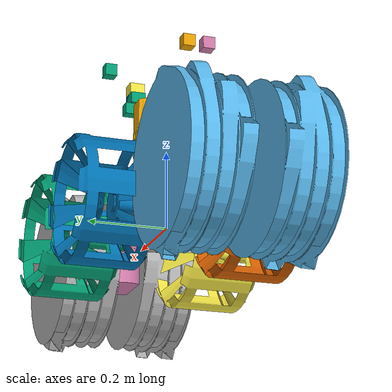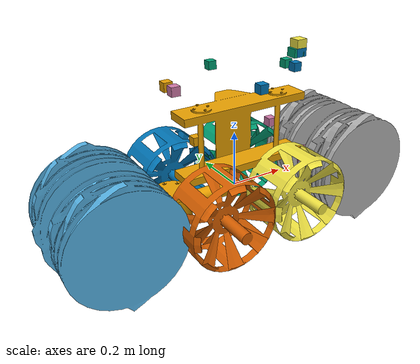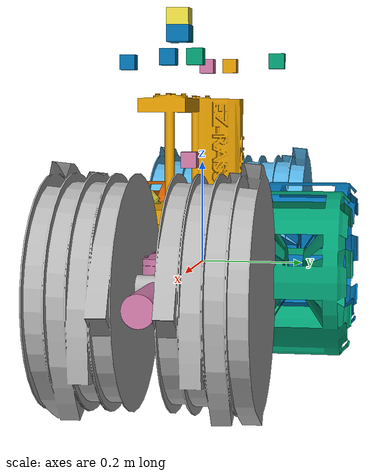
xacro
<?xml version="1.0"?>
<robot name="ipex" xmlns:xacro="http://www.ros.org/wiki/xacro">

  <!-- ============================ authoritative dimensions ============================ -->
  <!-- stereo_baseline: TRL5-final default (stewie_ipex_v1.json stereo.front.baseline_m = 0.05). -->
  <xacro:arg name="stereo_baseline" default="0.05"/>
  <xacro:property name="stereo_baseline" value="$(arg stereo_baseline)"/>

  <!-- vehicle block (stewie_ipex_v1.json) -->
  <xacro:property name="wheelbase"     value="0.30"/>     <!-- front<->rear wheel separation (x) -->
  <xacro:property name="track_gauge"   value="0.3645"/>   <!-- left<->right wheel separation (y) -->
  <xacro:property name="wheel_radius"  value="0.1525"/>   <!-- = WHEEL_RADIUS_M (30.5 cm dia) -->
  <xacro:property name="wheel_width"   value="0.18"/>
  <xacro:property name="cg_height"     value="0.21"/>     <!-- [ASSUMPTION] CG height (stability.py) -->
  <xacro:property name="dry_mass"      value="30.0"/>     <!-- SOURCED dry total (ROVER_MASS_CLASS_KG) -->

  <!-- chassis box (encloses the wheelbase/track) -->
  <xacro:property name="chassis_len"   value="0.46"/>     <!-- [ASSUMPTION] > wheelbase -->
  <xacro:property name="chassis_wid"   value="0.30"/>     <!-- [ASSUMPTION] < track (wheels outboard) -->
  <xacro:property name="chassis_hgt"   value="0.18"/>     <!-- [ASSUMPTION] -->

  <!-- bucket drum (large class, ipex_specs.DRUM_DIMENSIONS_M['large']) at both ends (bidirectional) -->
  <xacro:property name="drum_radius"   value="0.21855"/>  <!-- 0.4371 m dia / 2 -->
  <xacro:property name="drum_width"    value="0.3526"/>
  <xacro:property name="drum_reach"    value="0.32"/>     <!-- [ASSUMPTION] arm reach ahead of chassis -->

  <!-- [ASSUMPTION] mass allocation summing to the 30 kg sourced dry total -->
  <xacro:property name="m_chassis"     value="18.0"/>
  <xacro:property name="m_wheel"       value="1.5"/>
  <xacro:property name="m_drum"        value="3.0"/>

  <!-- ============================ reusable macros ============================ -->
  <xacro:macro name="box_inertial" params="m x y z">
    <inertial>
      <mass value="${m}"/>
      <inertia ixx="${m*(y*y+z*z)/12.0}" iyy="${m*(x*x+z*z)/12.0}" izz="${m*(x*x+y*y)/12.0}"
               ixy="0" ixz="0" iyz="0"/>
    </inertial>
  </xacro:macro>

  <!-- cylinder spinning about its local Y (wheel/drum axle along body +Y) -->
  <xacro:macro name="wheel_inertial" params="m r w">
    <inertial>
      <mass value="${m}"/>
      <inertia ixx="${m*(3*r*r+w*w)/12.0}" iyy="${m*r*r/2.0}" izz="${m*(3*r*r+w*w)/12.0}"
               ixy="0" ixz="0" iyz="0"/>
    </inertial>
  </xacro:macro>

  <!-- a drive wheel: continuous joint about body +Y, with joint-limit effort/velocity -->
  <xacro:macro name="wheel" params="name x y">
    <link name="${name}">
      <visual>
        <origin rpy="${pi/2} 0 0"/>
        <geometry><mesh filename="package://stewie_description/meshes/wheel.stl"/></geometry>
      </visual>
      <collision name="${name}_collision">
        <origin rpy="${pi/2} 0 0"/>
        <geometry><cylinder radius="${wheel_radius}" length="${wheel_width}"/></geometry>
      </collision>
      <xacro:wheel_inertial m="${m_wheel}" r="${wheel_radius}" w="${wheel_width}"/>
    </link>
    <joint name="${name}_joint" type="continuous">
      <parent link="base_link"/>
      <child link="${name}"/>
      <origin xyz="${x} ${y} 0"/>
      <axis xyz="0 1 0"/>
      <limit effort="20.0" velocity="6.0"/>   <!-- [ASSUMPTION] actuator limits -->
    </joint>
  </xacro:macro>

  <!-- a bucket drum: revolute arm joint (lift) carrying a spinning drum link -->
  <xacro:macro name="drum" params="name x">
    <link name="${name}_arm">
      <visual>
        <geometry><mesh filename="package://stewie_description/meshes/drum_arm.stl"/></geometry>
      </visual>
      <xacro:box_inertial m="0.5" x="${drum_reach}" y="0.05" z="0.05"/>
    </link>
    <joint name="${name}_arm_joint" type="continuous">
      <parent link="base_link"/>
      <child link="${name}_arm"/>
      <origin xyz="${x} 0 0"/>
      <axis xyz="0 1 0"/>
      <!-- continuous (full rotation) to match the EZ-RASSOR ROS2 URDF articulation: RASSOR arms swing
           the drums dig<->dump, not a small revolute lift. effort = ARM_EXCAVATION_LOAD_NM (IPEx spec). -->
      <limit effort="${18.5}" velocity="1.0"/>
    </joint>
    <link name="${name}">
      <visual>
        <origin rpy="${pi/2} 0 0"/>
        <geometry><mesh filename="package://stewie_description/meshes/drum.stl"/></geometry>
      </visual>
      <collision>
        <origin rpy="${pi/2} 0 0"/>
        <geometry><cylinder radius="${drum_radius}" length="${drum_width}"/></geometry>
      </collision>
      <xacro:wheel_inertial m="${m_drum}" r="${drum_radius}" w="${drum_width}"/>
    </link>
    <joint name="${name}_spin_joint" type="continuous">
      <parent link="${name}_arm"/>
      <child link="${name}"/>
      <origin xyz="${(drum_reach/2 if x &gt; 0 else -drum_reach/2)} 0 0"/>
      <axis xyz="0 1 0"/>
      <limit effort="25.0" velocity="2.62"/>  <!-- 25 RPM drum (ipex_specs.DRUM_SPEED_RPM) -->
    </joint>
  </xacro:macro>

  <!-- a camera: a mount link + an optical frame child (REP-103 mount -> optical convention).
       role/active are carried as comments + the rig-contract test reads them from the profile. -->
  <xacro:macro name="camera" params="frame x y z yaw">
    <link name="camera_${frame}">
      <visual><geometry><box size="0.03 0.03 0.03"/></geometry></visual>
      <xacro:box_inertial m="0.05" x="0.03" y="0.03" z="0.03"/>
    </link>
    <joint name="camera_${frame}_joint" type="fixed">
      <parent link="base_link"/>
      <child link="camera_${frame}"/>
      <origin xyz="${x} ${y} ${z}" rpy="0 0 ${yaw}"/>
    </joint>
    <!-- optical frame: REP-103 body (x-fwd,z-up) -> optical (z-fwd,x-right,y-down) = rpy(-pi/2,0,-pi/2) -->
    <link name="camera_${frame}_optical"/>
    <joint name="camera_${frame}_optical_joint" type="fixed">
      <parent link="camera_${frame}"/>
      <child link="camera_${frame}_optical"/>
      <origin rpy="${-pi/2} 0 ${-pi/2}"/>
    </joint>
  </xacro:macro>

  <!-- Optional depth-source hardpoints. The selected source can be stereo, LiDAR, RGB-D, or replay;
       the physical mount frames stay stable so downstream SLAM/mapping consumes the same cloud topic. -->
  <xacro:macro name="depth_mount" params="name x y z yaw">
    <link name="${name}">
      <visual><geometry><box size="0.04 0.04 0.03"/></geometry></visual>
      <collision><geometry><box size="0.04 0.04 0.03"/></geometry></collision>
      <xacro:box_inertial m="0.08" x="0.04" y="0.04" z="0.03"/>
    </link>
    <joint name="${name}_joint" type="fixed">
      <parent link="base_link"/>
      <child link="${name}"/>
      <origin xyz="${x} ${y} ${z}" rpy="0 0 ${yaw}"/>
    </joint>
  </xacro:macro>

  <!-- ============================ the robot ============================ -->
  <!-- base_link: the chassis body (REP-103 x-forward, y-left, z-up) -->
  <link name="base_link">
    <visual>
      <origin xyz="0 0 ${cg_height}"/>
      <geometry><mesh filename="package://stewie_description/meshes/rover_body.stl"/></geometry>
    </visual>
    <collision>
      <origin xyz="0 0 ${cg_height}"/>
      <geometry><box size="${chassis_len} ${chassis_wid} ${chassis_hgt}"/></geometry>
    </collision>
    <xacro:box_inertial m="${m_chassis}" x="${chassis_len}" y="${chassis_wid}" z="${chassis_hgt}"/>
  </link>

  <!-- IMU (REP-103 imu_link; matches autonomy_contract.FRAMES) -->
  <link name="imu_link"/>
  <joint name="imu_joint" type="fixed">
    <parent link="base_link"/>
    <child link="imu_link"/>
    <origin xyz="0 0 ${cg_height}"/>
  </joint>

  <!-- four skid-steer wheels (no steer joints), gauge/wheelbase from the profile -->
  <xacro:wheel name="front_left_wheel"  x="${ wheelbase/2}" y="${ track_gauge/2}"/>
  <xacro:wheel name="front_right_wheel" x="${ wheelbase/2}" y="${-track_gauge/2}"/>
  <xacro:wheel name="rear_left_wheel"   x="${-wheelbase/2}" y="${ track_gauge/2}"/>
  <xacro:wheel name="rear_right_wheel"  x="${-wheelbase/2}" y="${-track_gauge/2}"/>

  <!-- two counter-rotating bucket drums (bidirectional excavator) -->
  <xacro:drum name="front_drum" x="${ wheelbase/2 + drum_reach/2}"/>
  <xacro:drum name="rear_drum"  x="${-wheelbase/2 - drum_reach/2}"/>

  <xacro:property name="cam_z" value="${cg_height + chassis_hgt/2 + 0.10}"/>  <!-- on a short mast -->
  <xacro:property name="cam_fwd" value="${chassis_len/2}"/>
  <!-- front nav stereo pair (operational) -->
  <xacro:camera frame="front_left"  x="${ cam_fwd}" y="${ stereo_baseline/2}" z="${cam_z}" yaw="0"/>
  <xacro:camera frame="front_right" x="${ cam_fwd}" y="${-stereo_baseline/2}" z="${cam_z}" yaw="0"/>
  <!-- rear nav stereo pair (redundant; IPEx is bidirectional) -->
  <xacro:camera frame="rear_left"   x="${-cam_fwd}" y="${-stereo_baseline/2}" z="${cam_z}" yaw="${pi}"/>
  <xacro:camera frame="rear_right"  x="${-cam_fwd}" y="${ stereo_baseline/2}" z="${cam_z}" yaw="${pi}"/>
  <!-- side localization monos (lander tracking): left operational, right redundant -->
  <xacro:camera frame="left_mono"   x="0" y="${ chassis_wid/2}" z="${cam_z}" yaw="${ pi/2}"/>
  <xacro:camera frame="right_mono"  x="0" y="${-chassis_wid/2}" z="${cam_z}" yaw="${-pi/2}"/>
  <!-- between-drum monos (excavation awareness): front operational, back redundant -->
  <xacro:camera frame="drum_front"  x="${ wheelbase/2}" y="0" z="${cg_height}" yaw="0"/>
  <xacro:camera frame="drum_back"   x="${-wheelbase/2}" y="0" z="${cg_height}" yaw="${pi}"/>

  <!-- Swappable depth-source mounts: stereo is flight-selected in the profile; LiDAR/RGB-D can be
       installed on the same forward hardpoint when those sensors are available. -->
  <xacro:depth_mount name="depth_sensor_mount" x="${ cam_fwd + 0.02}" y="0" z="${cam_z + 0.04}" yaw="0"/>
  <xacro:depth_mount name="lidar_front_mount" x="${ cam_fwd + 0.03}" y="0" z="${cam_z + 0.07}" yaw="0"/>
  <xacro:depth_mount name="rgbd_front_mount" x="${ cam_fwd + 0.03}" y="0" z="${cam_z + 0.04}" yaw="0"/>

</robot>
